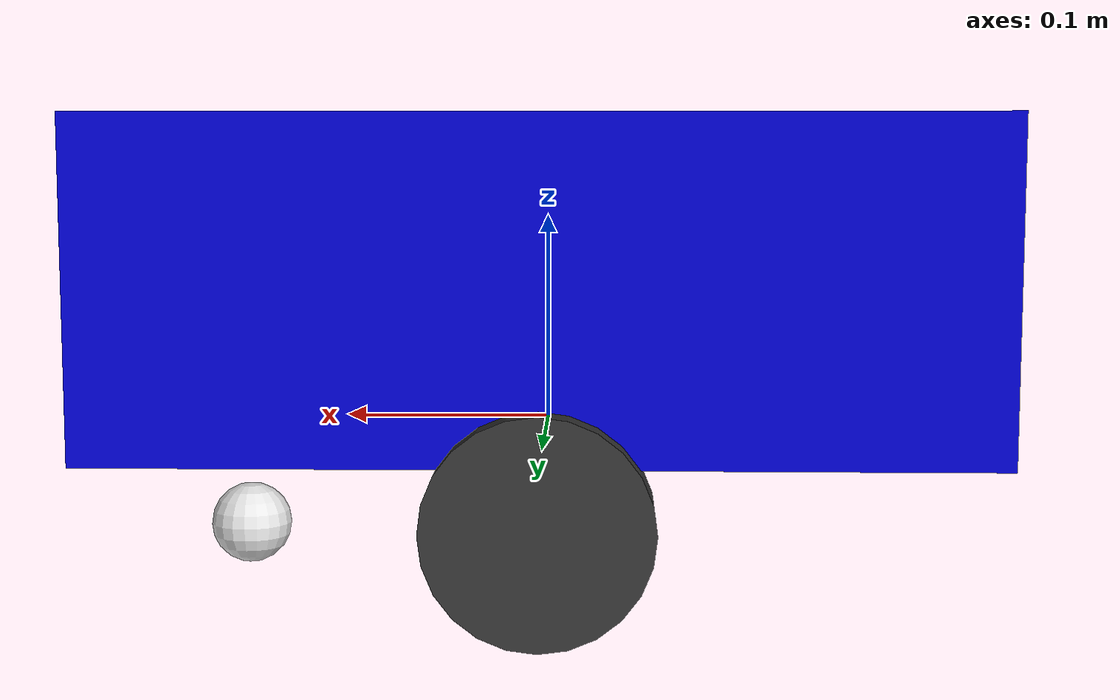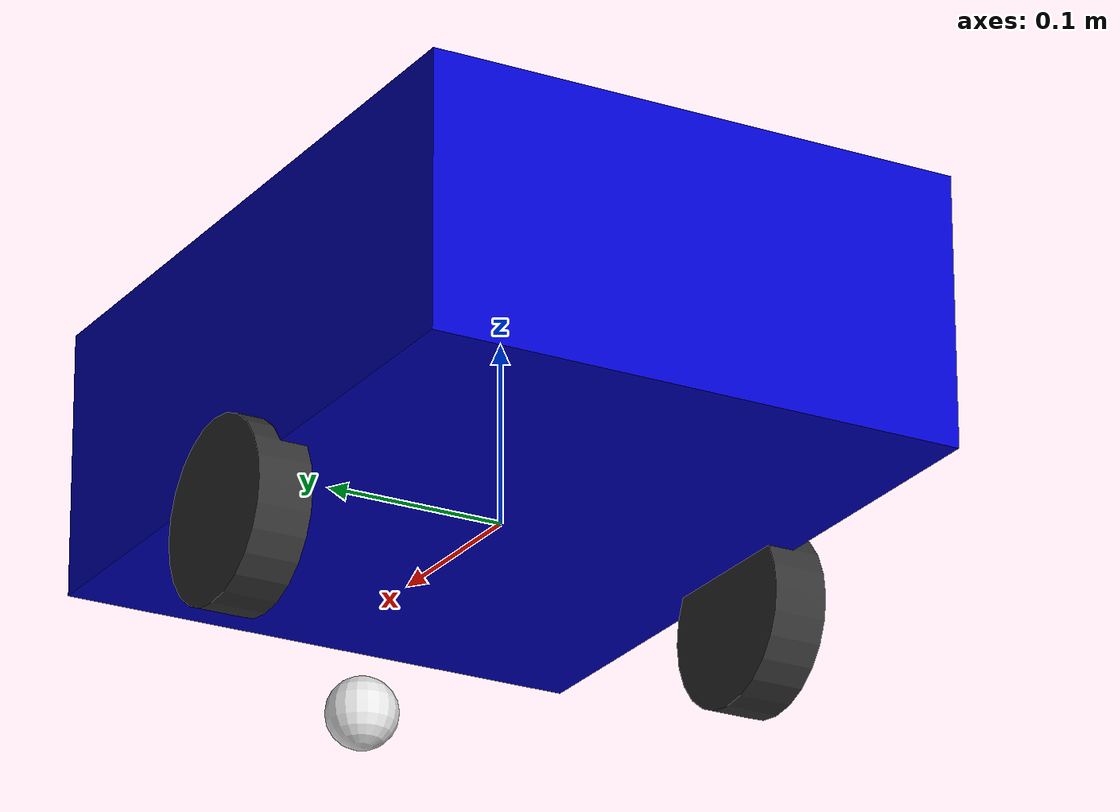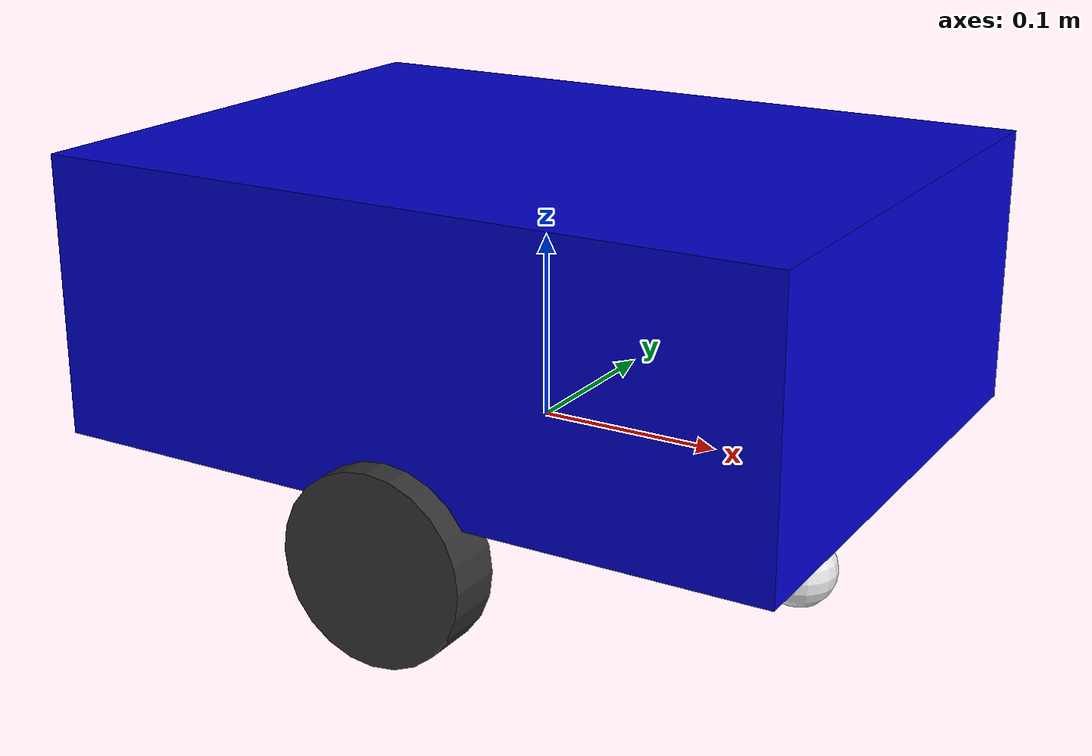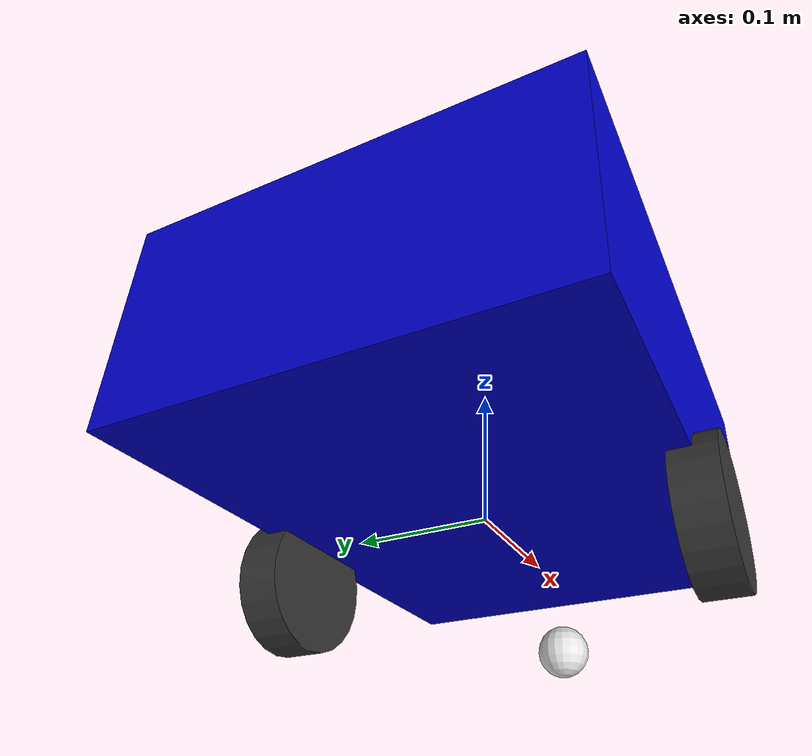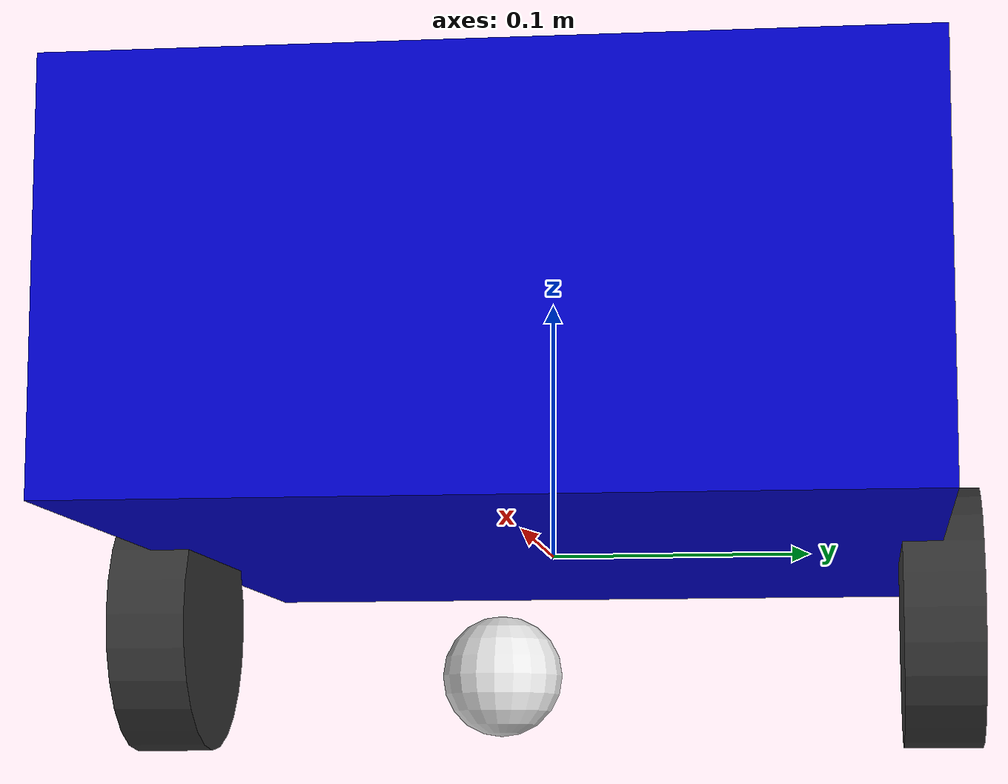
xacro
<?xml version="1.0"?>
<robot xmlns:xacro="http://www.ros.org/wiki/xacro" name="simple_robot">

  <!-- ====== 参数化属性 ====== -->
  <xacro:property name="chassis_length" value="0.4"/>
  <xacro:property name="chassis_width"  value="0.3"/>
  <xacro:property name="chassis_height" value="0.15"/>
  <xacro:property name="wheel_radius"   value="0.05"/>
  <xacro:property name="wheel_width"    value="0.03"/>
  <xacro:property name="caster_radius"  value="0.02"/>
  <xacro:property name="wheel_y"        value="${chassis_width/2}"/>
  <xacro:property name="wheel_z"        value="${-chassis_height/2 + wheel_radius}"/>

  <!-- ====== 材料定义 ====== -->
  <material name="blue">
    <color rgba="0 0 0.8 1"/>
  </material>
  <material name="black">
    <color rgba="0.2 0.2 0.2 1"/>
  </material>
  <material name="white">
    <color rgba="0.9 0.9 0.9 1"/>
  </material>

  <!-- ====== 车轮宏 ====== -->
  <xacro:macro name="wheel" params="name prefix reflect">
    <joint name="${name}_wheel_joint" type="continuous">
      <parent link="base_link"/>
      <child link="${prefix}_wheel_link"/>
      <origin xyz="0 ${reflect * wheel_y} ${wheel_z}" rpy="1.5708 0 0"/>
      <axis xyz="0 1 0"/>
    </joint>

    <link name="${prefix}_wheel_link">
      <visual>
        <geometry>
          <cylinder radius="${wheel_radius}" length="${wheel_width}"/>
        </geometry>
        <material name="black"/>
      </visual>
      <collision>
        <geometry>
          <cylinder radius="${wheel_radius}" length="${wheel_width}"/>
        </geometry>
      </collision>
      <inertial>
        <mass value="0.1"/>
        <inertia ixx="0.0001" ixy="0" ixz="0" iyy="0.0001" iyz="0" izz="0.0001"/>
      </inertial>
    </link>
  </xacro:macro>

  <!-- ====== base_link ====== -->
  <link name="base_link">
    <visual>
      <geometry>
        <box size="${chassis_length} ${chassis_width} ${chassis_height}"/>
      </geometry>
      <origin xyz="0 0 ${chassis_height/2}" rpy="0 0 0"/>
      <material name="blue"/>
    </visual>
    <collision>
      <geometry>
        <box size="${chassis_length} ${chassis_width} ${chassis_height}"/>
      </geometry>
      <origin xyz="0 0 ${chassis_height/2}" rpy="0 0 0"/>
    </collision>
    <inertial>
      <mass value="5.0"/>
      <origin xyz="0 0 ${chassis_height/2}"/>
      <inertia ixx="0.1" ixy="0" ixz="0" iyy="0.1" iyz="0" izz="0.15"/>
    </inertial>
  </link>

  <!-- ====== 万向轮 ====== -->
  <joint name="caster_wheel_joint" type="fixed">
    <parent link="base_link"/>
    <child link="caster_wheel_link"/>
    <origin xyz="0.15 0 ${-chassis_height/2 + caster_radius}" rpy="0 0 0"/>
  </joint>

  <link name="caster_wheel_link">
    <visual>
      <geometry>
        <sphere radius="${caster_radius}"/>
      </geometry>
      <material name="white"/>
    </visual>
    <collision>
      <geometry>
        <sphere radius="${caster_radius}"/>
      </geometry>
    </collision>
  </link>

  <!-- ====== 传感器固定连接 (可选扩展) ====== -->
  <joint name="lidar_joint" type="fixed">
    <parent link="base_link"/>
    <child link="lidar_link"/>
    <origin xyz="0.15 0 ${chassis_height/2 + 0.05}" rpy="0 0 0"/>
  </joint>

  <link name="lidar_link">
    <visual>
      <geometry>
        <cylinder radius="0.04" length="0.02"/>
      </geometry>
      <material name="black"/>
    </visual>
  </link>

  <!-- ====== 实例化车轮 ====== -->
  <xacro:wheel name="left"  prefix="left"  reflect="1"/>
  <xacro:wheel name="right" prefix="right" reflect="-1"/>

</robot>
